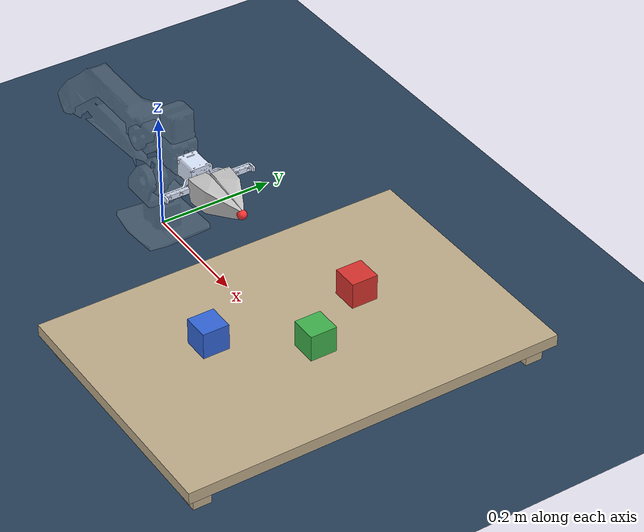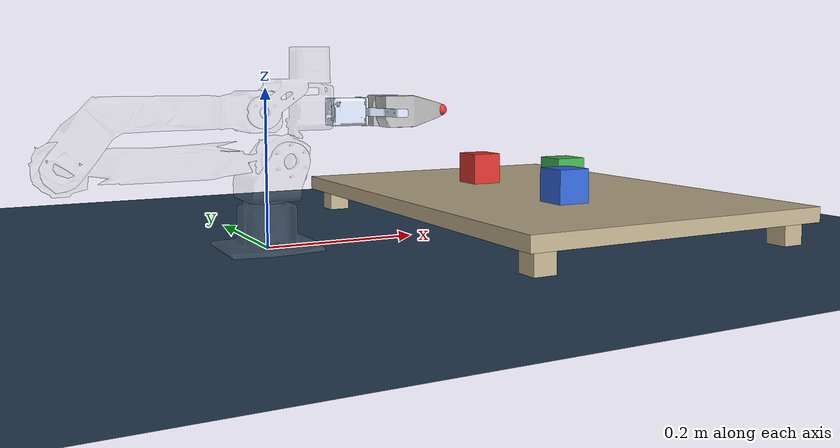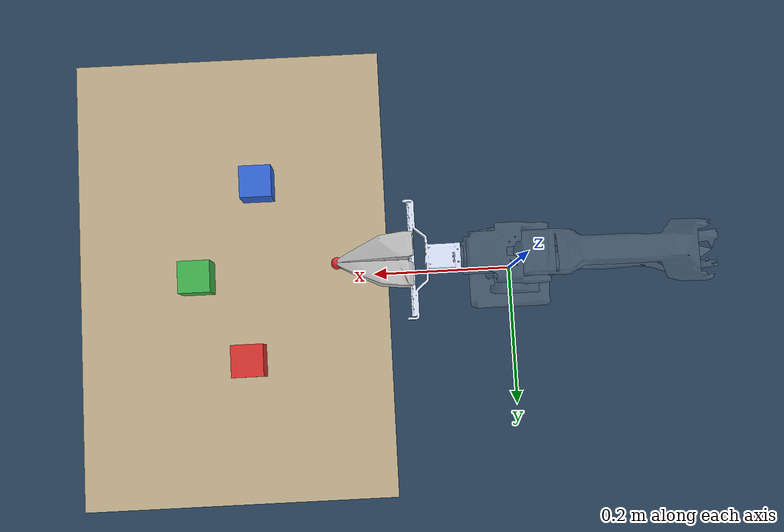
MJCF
<mujoco model="panthera_scene">
  <include file="panthera.xml" />
  <statistic center="0.3 0 0.3" extent="1.2" />
  <visual>
    <headlight diffuse="0.6 0.6 0.6" ambient="0.3 0.3 0.3" specular="0 0 0" />
    <rgba haze="0.15 0.25 0.35 1" />
    <global azimuth="14" elevation="-34" offwidth="1920" offheight="1080" />
  </visual>
  <asset>
    <texture type="skybox" builtin="gradient" rgb1="0.3 0.5 0.7" rgb2="0 0 0" width="512" height="3072" />
    <texture type="2d" name="groundplane" builtin="checker" mark="edge" rgb1="0.2 0.3 0.4" rgb2="0.1 0.2 0.3" markrgb="0.8 0.8 0.8" width="300" height="300" />
    <material name="groundplane" texture="groundplane" texuniform="true" texrepeat="5 5" reflectance="0.1" />
    <material name="table" rgba="0.75 0.68 0.55 1" reflectance="0.05" />
  </asset>
  <worldbody>
    <light pos="0 0 2" dir="0 0 -1" directional="true" />
    <geom name="floor" type="plane" size="0 0 0.05" material="groundplane" />
    <camera name="overhead" pos="0.4 0 0.9" xyaxes="0 -1 0 1 0 0" fovy="50" />
    <body name="table" pos="0.4 0 0.0400">
      <geom name="table_top" type="box" size="0.22 0.32 0.0100" material="table" condim="4" friction="0.3 0.02 0.0005" />
      <geom name="table_leg_mm" type="box" size="0.015 0.015 0.0150" pos="-0.1900 -0.2900 -0.0250" material="table" contype="0" conaffinity="0" />
      <geom name="table_leg_mp" type="box" size="0.015 0.015 0.0150" pos="-0.1900 0.2900 -0.0250" material="table" contype="0" conaffinity="0" />
      <geom name="table_leg_pm" type="box" size="0.015 0.015 0.0150" pos="0.1900 -0.2900 -0.0250" material="table" contype="0" conaffinity="0" />
      <geom name="table_leg_pp" type="box" size="0.015 0.015 0.0150" pos="0.1900 0.2900 -0.0250" material="table" contype="0" conaffinity="0" />
    </body>
    <body name="cube_red" pos="0.38 0.12 0.0725">
      <freejoint name="cube_red" />
      <geom name="cube_red" type="box" size="0.0225 0.0225 0.0225" rgba="0.85 0.2 0.18 1" density="500.0" condim="6" friction="0.8 0.08 0.004" solimp="0.98 0.99 0.001" solref="0.005 1" />
    </body>
    <body name="cube_green" pos="0.45 0.0 0.0725">
      <freejoint name="cube_green" />
      <geom name="cube_green" type="box" size="0.0225 0.0225 0.0225" rgba="0.25 0.7 0.3 1" density="500.0" condim="6" friction="0.8 0.08 0.004" solimp="0.98 0.99 0.001" solref="0.005 1" />
    </body>
    <body name="cube_blue" pos="0.36 -0.13 0.0725">
      <freejoint name="cube_blue" />
      <geom name="cube_blue" type="box" size="0.0225 0.0225 0.0225" rgba="0.2 0.4 0.85 1" density="500.0" condim="6" friction="0.8 0.08 0.004" solimp="0.98 0.99 0.001" solref="0.005 1" />
    </body>
  </worldbody>
  <equality>
    <weld name="pad_grasp_cube_red" body1="link6" body2="cube_red" active="false" solref="0.015 1" solimp="0.90 0.98 0.002" />
    <weld name="pad_grasp_cube_green" body1="link6" body2="cube_green" active="false" solref="0.015 1" solimp="0.90 0.98 0.002" />
    <weld name="pad_grasp_cube_blue" body1="link6" body2="cube_blue" active="false" solref="0.015 1" solimp="0.90 0.98 0.002" />
  </equality>
  <contact>
    <pair geom1="L_finger_pad" geom2="cube_red" condim="6" friction="0.8 0.8 0.01 0.001 0.001" solref="0.005 1" solimp="0.98 0.99 0.001" />
    <pair geom1="R_finger_pad" geom2="cube_red" condim="6" friction="0.8 0.8 0.01 0.001 0.001" solref="0.005 1" solimp="0.98 0.99 0.001" />
    <pair geom1="L_finger_pad" geom2="cube_green" condim="6" friction="0.8 0.8 0.01 0.001 0.001" solref="0.005 1" solimp="0.98 0.99 0.001" />
    <pair geom1="R_finger_pad" geom2="cube_green" condim="6" friction="0.8 0.8 0.01 0.001 0.001" solref="0.005 1" solimp="0.98 0.99 0.001" />
    <pair geom1="L_finger_pad" geom2="cube_blue" condim="6" friction="0.8 0.8 0.01 0.001 0.001" solref="0.005 1" solimp="0.98 0.99 0.001" />
    <pair geom1="R_finger_pad" geom2="cube_blue" condim="6" friction="0.8 0.8 0.01 0.001 0.001" solref="0.005 1" solimp="0.98 0.99 0.001" />
  </contact>
</mujoco>

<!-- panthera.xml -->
<mujoco model="panthera_ht">
  <compiler angle="radian" meshdir="." autolimits="true" />
  <option timestep="0.002" integrator="implicitfast" cone="elliptic" impratio="10" />
  <default>
    <joint damping="0.2" armature="0.05" frictionloss="0.1" />
    <general biastype="affine" />
    <default class="visual">
      <geom type="mesh" group="2" contype="0" conaffinity="0" density="0" />
    </default>
    <default class="collision">
      <geom type="mesh" group="3" contype="1" conaffinity="1" condim="4" friction="1.0 0.05 0.001" />
    </default>
  </default>
  <asset>
    <mesh name="base_link" content_type="model/stl" file="meshes/visual/base_link.STL" />
    <mesh name="link1" content_type="model/stl" file="meshes/visual/link1.STL" />
    <mesh name="link2" content_type="model/stl" file="meshes/visual/link2.STL" />
    <mesh name="link3" content_type="model/stl" file="meshes/visual/link3.STL" />
    <mesh name="link4" content_type="model/stl" file="meshes/visual/link4.STL" />
    <mesh name="link5" content_type="model/stl" file="meshes/visual/link5.STL" />
    <mesh name="link6" content_type="model/stl" file="meshes/visual/link6.STL" />
    <mesh name="L_finger" content_type="model/stl" file="meshes/visual/L_finger.STL" />
    <mesh name="R_finger" content_type="model/stl" file="meshes/visual/R_finger.STL" />
    <mesh name="gripper_center" content_type="model/stl" file="meshes/visual/gripper_center.STL" />
    <mesh name="base_link_col" content_type="model/stl" file="meshes/collision/base_link.STL" />
    <mesh name="link1_col" content_type="model/stl" file="meshes/collision/link1.STL" />
    <mesh name="link2_col" content_type="model/stl" file="meshes/collision/link2.STL" />
    <mesh name="link3_col" content_type="model/stl" file="meshes/collision/link3.STL" />
    <mesh name="link4_col" content_type="model/stl" file="meshes/collision/link4.STL" />
    <mesh name="link5_col" content_type="model/stl" file="meshes/collision/link5.STL" />
    <mesh name="link6_col" content_type="model/stl" file="meshes/collision/link6.STL" />
    <mesh name="L_finger_col" content_type="model/stl" file="meshes/collision/L_finger.STL" />
    <mesh name="R_finger_col" content_type="model/stl" file="meshes/collision/R_finger.STL" />
    <mesh name="gripper_center_col" content_type="model/stl" file="meshes/collision/gripper_center.STL" />
  </asset>
  <worldbody>
    <geom class="visual" mesh="base_link" rgba="0.752941 0.752941 0.752941 0.12" />
    <geom class="collision" mesh="base_link_col" />
    <body name="link1" pos="0 0 0.0584">
      <inertial pos="0.00278873 -0.00094387 0.0249184" quat="0.692661 0.650108 0.225614 -0.216051" mass="0.281016" diaginertia="0.000421358 0.000343661 0.000213101" />
      <joint name="joint1" range="-2.4 2.4" actuatorfrcrange="-21 21" />
      <geom class="visual" mesh="link1" rgba="0.752941 0.752941 0.752941 0.12" />
      <geom class="collision" mesh="link1_col" />
      <body name="link2" pos="0.018199 0 0.053">
        <inertial pos="-0.129362 -0.00213339 7.183e-05" quat="0.00988446 0.706238 0.00888299 0.70785" mass="1.51651" diaginertia="0.0227212 0.0226105 0.00044695" />
        <joint name="joint2" range="0 3.2" actuatorfrcrange="-36 36" axis="0 1 0" />
        <geom class="visual" mesh="link2" rgba="0.752941 0.752941 0.752941 0.12" />
        <geom class="collision" mesh="link2_col" />
        <body name="link3" pos="-0.26 0 0">
          <inertial pos="0.163431 -0.00164646 0.0533743" quat="-0.0903299 0.649643 -0.0759146 0.751027" mass="0.669178" diaginertia="0.00543522 0.00538336 0.00051072" />
          <joint name="joint3" range="0 4" actuatorfrcrange="-36 36" axis="0 -1 0" />
          <geom class="visual" mesh="link3" rgba="0.752941 0.752941 0.752941 0.12" />
          <geom class="collision" mesh="link3_col" />
          <body name="link4" pos="0.23 0 0.06">
            <inertial pos="0.0524013 -0.00055249 0.0409418" quat="-0.0119308 0.442275 0.0207973 0.896559" mass="0.307805" diaginertia="0.000483913 0.000395159 0.000124278" />
            <joint name="joint4" range="-1.6 1.6" actuatorfrcrange="-21 21" axis="0 -1 0" />
            <geom class="visual" mesh="link4" rgba="0.752941 0.752941 0.752941 0.12" />
            <geom class="collision" mesh="link4_col" />
            <body name="link5" pos="0.07 0 0.036319">
              <inertial pos="0.00303007 8.509e-05 -0.0362408" quat="0.705992 0.0034971 0.00378767 0.708201" mass="0.237111" diaginertia="5.77301e-05 4.81515e-05 3.35885e-05" />
              <joint name="joint5" range="-1.7 1.7" actuatorfrcrange="-10 10" axis="0 0 -1" />
              <geom class="visual" mesh="link5" rgba="0.752941 0.752941 0.752941 0.12" />
              <geom class="collision" mesh="link5_col" />
              <body name="link6" pos="0.02345 0 -0.039">
                <inertial pos="0.0365806 -4.4236e-05 -3.47544e-05" quat="0.512706 0.486973 -0.500963 0.499025" mass="0.106038" diaginertia="0.00177399 0.00116496 0.000713576" />
                <joint name="joint6" range="-2.5 2.5" actuatorfrcrange="-10 10" axis="1 0 0" />
                <geom class="visual" mesh="link6" rgba="0.752941 0.752941 0.752941 0.12" />
                <geom class="collision" mesh="link6_col" />
                <geom class="visual" mesh="gripper_center" rgba="0.866667 0.909804 1 1" pos="0.165 0 0" />
                <geom class="collision" mesh="gripper_center_col" pos="0.165 0 0" />
                <body name="L_finger" pos="0.165 0 0">
                  <inertial pos="-0.0685513 0.0168638 -0.000510235" quat="0.462198 0.46404 0.540064 0.528556" mass="0.127458" diaginertia="5.21681e-05 4.65029e-05 2.2273e-05" />
                  <joint name="L_finger_joint" type="slide" range="0 0.04" actuatorfrcrange="-100 100" axis="0 1 0" />
                  <geom class="visual" mesh="L_finger" rgba="0.752941 0.752941 0.752941 1" />
                  <geom class="collision" mesh="L_finger_col" contype="0" conaffinity="0" />
                  <site name="L_finger_tip" pos="0.005 0 0" size="0.005" group="4" />
                  <geom name="L_finger_pad" type="box" size="0.0225 0.002 0.01" pos="-0.0225 0.0015 0" group="3" condim="6" friction="2.0 0.2 0.01" solref="0.005 1" solimp="0.98 0.99 0.001" />
                  <geom name="L_finger_bulk" type="box" size="0.035 0.015 0.015" pos="-0.058 0.0190 0" group="3" condim="4" friction="1.0 0.05 0.001" />
                </body>
                <body name="R_finger" pos="0.165 0 0">
                  <inertial pos="-0.0685513 -0.0168638 0.000510465" quat="0.540064 0.528556 0.462198 0.46404" mass="0.127458" diaginertia="5.21681e-05 4.65029e-05 2.2273e-05" />
                  <joint name="R_finger_joint" type="slide" range="-0.04 0" actuatorfrcrange="-100 100" axis="0 1 0" />
                  <geom class="visual" mesh="R_finger" rgba="0.752941 0.752941 0.752941 1" />
                  <geom class="collision" mesh="R_finger_col" contype="0" conaffinity="0" />
                  <site name="R_finger_tip" pos="0.005 0 0" size="0.005" group="4" />
                  <geom name="R_finger_pad" type="box" size="0.0225 0.002 0.01" pos="-0.0225 -0.0015 0" group="3" condim="6" friction="2.0 0.2 0.01" solref="0.005 1" solimp="0.98 0.99 0.001" />
                  <geom name="R_finger_bulk" type="box" size="0.035 0.015 0.015" pos="-0.058 -0.0190 0" group="3" condim="4" friction="1.0 0.05 0.001" />
                </body>
                <site name="grip_site" pos="0.16500 0 0" size="0.008" rgba="1 0.2 0.2 1" group="1" />
                <camera name="wrist" pos="0.055 0 0.055" xyaxes="0.00000 -1.00000 0.00000 0.44721 0.00000 0.89443" fovy="70" />
              </body>
            </body>
          </body>
        </body>
      </body>
    </body>
  </worldbody>
  <equality>
    <joint joint1="R_finger_joint" joint2="L_finger_joint" polycoef="0 -1 0 0 0" />
  </equality>
  <contact>
    <exclude body1="world" body2="link1" />
    <exclude body1="L_finger" body2="R_finger" />
    <exclude body1="link6" body2="L_finger" />
    <exclude body1="link6" body2="R_finger" />
  </contact>
  <actuator>
    <position name="joint1" joint="joint1" kp="3000.0" kv="54.0" ctrlrange="-2.4000 2.4000" forcerange="-21.0 21.0" />
    <position name="joint2" joint="joint2" kp="5000.0" kv="90.0" ctrlrange="0.0000 3.2000" forcerange="-36.0 36.0" />
    <position name="joint3" joint="joint3" kp="4000.0" kv="68.0" ctrlrange="0.0000 4.0000" forcerange="-36.0 36.0" />
    <position name="joint4" joint="joint4" kp="1200.0" kv="23.0" ctrlrange="-1.6000 1.6000" forcerange="-21.0 21.0" />
    <position name="joint5" joint="joint5" kp="800.0" kv="14.0" ctrlrange="-1.7000 1.7000" forcerange="-10.0 10.0" />
    <position name="joint6" joint="joint6" kp="800.0" kv="14.0" ctrlrange="-2.5000 2.5000" forcerange="-10.0 10.0" />
    <position name="gripper" joint="L_finger_joint" kp="400.0" kv="20.0" ctrlrange="0 0.04" forcerange="-3 3" />
  </actuator>
  <keyframe>
    <key name="home" qpos="0 1.2 1.4 0 0 0 0.04 -0.04" ctrl="0 1.2 1.4 0 0 0 0.04" />
  </keyframe>
</mujoco>
